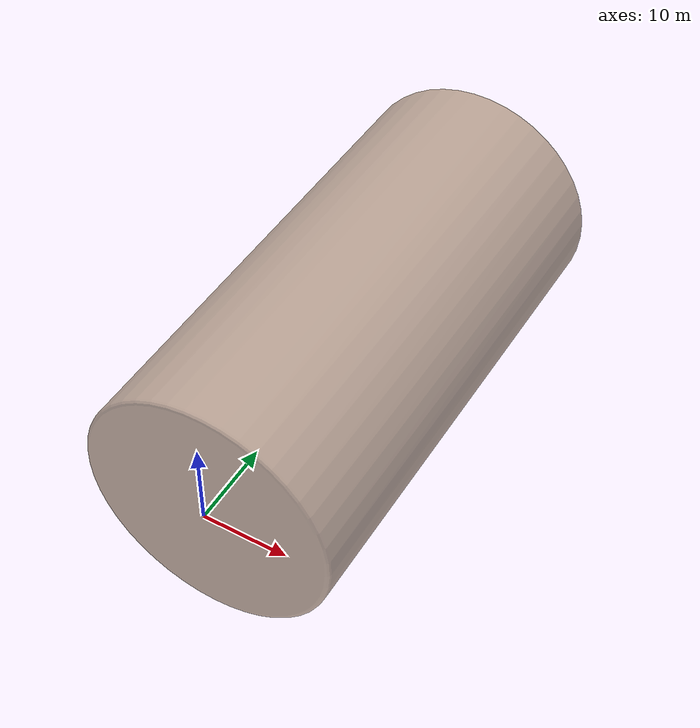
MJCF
<mujoco model="cylinder_model">
    <compiler angle="degree" meshdir="assets" coordinate="local" />
    <option timestep="0.01" gravity="0 0 -9.81"/>

    <asset>
        <mesh name="cylinder_mesh" file="cylinder.stl"/>
    </asset>

    <worldbody>
        <body name="cylinder_body" pos="0 0 0.1">
            <geom name="cylinder_geom" type="mesh" mesh="cylinder_mesh"
                  rgba="0.65 0.54 0.44 0.7" mass="0.1" />
        </body>
    </worldbody>
</mujoco>
